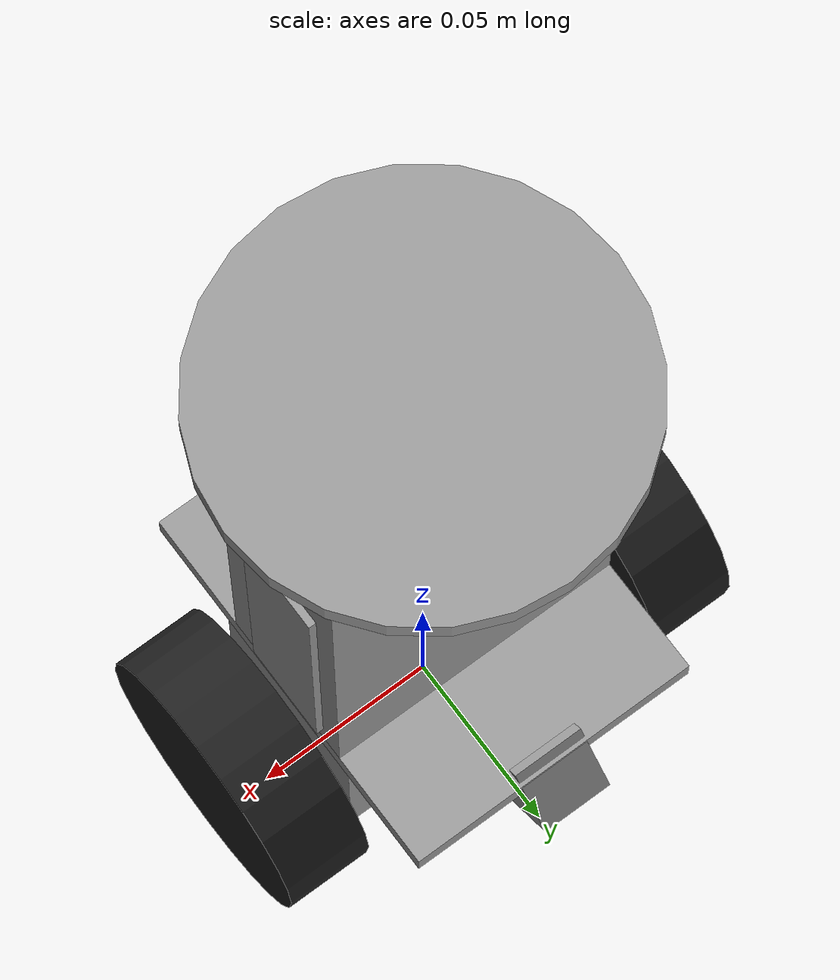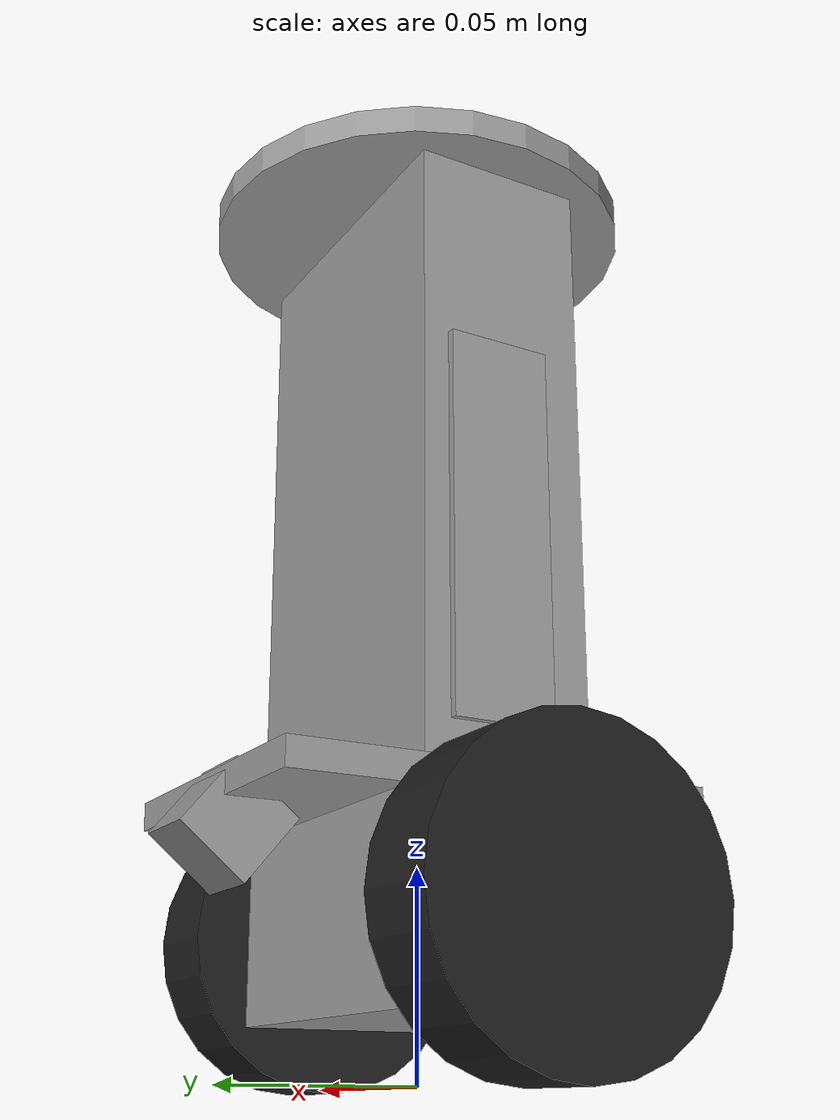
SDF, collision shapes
<sdf version='1.7'>
  <model name='balance_robot'>
    <link name='base_footprint'>
      <inertial>
        <pose>0 0.000456 0.079402 0 -0 0</pose>
        <mass>1.163</mass>
        <inertia>
          <ixx>0.00420792</ixx>
          <ixy>0</ixy>
          <ixz>0</ixz>
          <iyy>0.00452083</iyy>
          <iyz>-2.2842e-05</iyz>
          <izz>0.00102746</izz>
        </inertia>
      </inertial>
      <collision name='base_footprint_fixed_joint_lump__base_link_collision'>
        <pose>0 0 0.0375 0 -0 0</pose>
        <geometry>
          <box>
            <size>0.083 0.05 0.046</size>
          </box>
        </geometry>
        <surface>
          <contact>
            <ode/>
          </contact>
          <friction>
            <ode/>
          </friction>
        </surface>
      </collision>
      <collision name='base_footprint_fixed_joint_lump__body_link_collision_1'>
        <pose>0 0 0.1425 0 -0 0</pose>
        <geometry>
          <box>
            <size>0.083 0.043 0.15</size>
          </box>
        </geometry>
        <surface>
          <contact>
            <ode/>
          </contact>
          <friction>
            <ode/>
          </friction>
        </surface>
      </collision>
      <collision name='base_footprint_fixed_joint_lump__batteryPack_link_collision_2'>
        <pose>0 0.002 0.1225 0 -0 0</pose>
        <geometry>
          <box>
            <size>0.087 0.026 0.0936</size>
          </box>
        </geometry>
        <surface>
          <contact>
            <ode/>
          </contact>
          <friction>
            <ode/>
          </friction>
        </surface>
      </collision>
      <collision name='base_footprint_fixed_joint_lump__basePlate_link_collision_3'>
        <pose>0 0 0.064 0 -0 0</pose>
        <geometry>
          <box>
            <size>0.083 0.108 0.007</size>
          </box>
        </geometry>
        <surface>
          <contact>
            <ode/>
          </contact>
          <friction>
            <ode/>
          </friction>
        </surface>
      </collision>
      <collision name='base_footprint_fixed_joint_lump__backTipStop_link_collision_4'>
        <pose>0 0.049857 0.055508 -0.879646 0 0</pose>
        <geometry>
          <box>
            <size>0.02 0.02 0.02</size>
          </box>
        </geometry>
        <surface>
          <contact>
            <ode/>
          </contact>
          <friction>
            <ode>
              <mu>0.5</mu>
              <mu2>0.5</mu2>
            </ode>
          </friction>
        </surface>
      </collision>
      <collision name='base_footprint_fixed_joint_lump__frontTipStop_link_collision_5'>
        <pose>0 -0.049857 0.055508 0.879646 -0 0</pose>
        <geometry>
          <box>
            <size>0.02 0.02 0.02</size>
          </box>
        </geometry>
        <surface>
          <contact>
            <ode/>
          </contact>
          <friction>
            <ode>
              <mu>0.5</mu>
              <mu2>0.5</mu2>
            </ode>
          </friction>
        </surface>
      </collision>
      <collision name='base_footprint_fixed_joint_lump__topPlate_link_collision_6'>
        <pose>0 0 0.221 0 -0 0</pose>
        <geometry>
          <cylinder>
            <length>0.007</length>
            <radius>0.054</radius>
          </cylinder>
        </geometry>
        <surface>
          <contact>
            <ode/>
          </contact>
          <friction>
            <ode/>
          </friction>
        </surface>
      </collision>
      <visual name='base_footprint_fixed_joint_lump__base_link_visual'>
        <pose>0 0 0.0375 0 -0 0</pose>
        <geometry>
          <mesh>
            <scale>1 1 1</scale>
            <uri>model://balance_robot/meshes/StepperBase.dae</uri>
          </mesh>
        </geometry>
        <material>
          <script>
            <name>Gazebo/Gray</name>
            <uri>file://media/materials/scripts/gazebo.material</uri>
          </script>
        </material>
      </visual>
      <visual name='base_footprint_fixed_joint_lump__body_link_visual_1'>
        <pose>0.00045 0 0.129 0 -0 0</pose>
        <geometry>
          <mesh>
            <scale>1 1 1</scale>
            <uri>model://balance_robot/meshes/MainBody.dae</uri>
          </mesh>
        </geometry>
        <material>
          <script>
            <name>Gazebo/White</name>
            <uri>file://media/materials/scripts/gazebo.material</uri>
          </script>
        </material>
      </visual>
      <visual name='base_footprint_fixed_joint_lump__batteryPack_link_visual_2'>
        <pose>0 -0.0055 0.1225 0 -0 0</pose>
        <geometry>
          <mesh>
            <scale>1 1 1</scale>
            <uri>model://balance_robot/meshes/PowerBank.dae</uri>
          </mesh>
        </geometry>
        <material>
          <script>
            <name>Gazebo/Gray</name>
            <uri>file://media/materials/scripts/gazebo.material</uri>
          </script>
        </material>
      </visual>
      <visual name='base_footprint_fixed_joint_lump__basePlate_link_visual_3'>
        <pose>0 0 0.064 0 -0 0</pose>
        <geometry>
          <box>
            <size>0.083 0.108 0.007</size>
          </box>
        </geometry>
        <material>
          <script>
            <name>Gazebo/Blue</name>
            <uri>file://media/materials/scripts/gazebo.material</uri>
          </script>
        </material>
      </visual>
      <visual name='base_footprint_fixed_joint_lump__backTipStop_link_visual_4'>
        <pose>0 0.049857 0.055508 -0.879646 0 0</pose>
        <geometry>
          <mesh>
            <scale>1 1 1</scale>
            <uri>model://balance_robot/meshes/TipOverStop.dae</uri>
          </mesh>
        </geometry>
        <material>
          <script>
            <name>Gazebo/Blue</name>
            <uri>file://media/materials/scripts/gazebo.material</uri>
          </script>
        </material>
      </visual>
      <visual name='base_footprint_fixed_joint_lump__frontTipStop_link_visual_5'>
        <pose>0 -0.049857 0.055508 0.879646 -0 0</pose>
        <geometry>
          <mesh>
            <scale>1 1 1</scale>
            <uri>model://balance_robot/meshes/TipOverStop.dae</uri>
          </mesh>
        </geometry>
        <material>
          <script>
            <name>Gazebo/Blue</name>
            <uri>file://media/materials/scripts/gazebo.material</uri>
          </script>
        </material>
      </visual>
      <visual name='base_footprint_fixed_joint_lump__topPlate_link_visual_6'>
        <pose>0.0001 -0.0015 0.221 0 -0 0</pose>
        <geometry>
          <mesh>
            <scale>1 1 1</scale>
            <uri>model://balance_robot/meshes/TopPlate.dae</uri>
          </mesh>
        </geometry>
        <material>
          <script>
            <name>Gazebo/Blue</name>
            <uri>file://media/materials/scripts/gazebo.material</uri>
          </script>
        </material>
      </visual>
    </link>
    <joint name='left_wheel_joint' type='revolute'>
      <pose relative_to='base_footprint'>-0.05675 0 0.0365 0 -1.5708 0</pose>
      <parent>base_footprint</parent>
      <child>left_wheel_link</child>
      <axis>
        <xyz>0 0 -1</xyz>
        <limit>
          <lower>-1e+16</lower>
          <upper>1e+16</upper>
        </limit>
        <dynamics>
          <spring_reference>0</spring_reference>
          <spring_stiffness>0</spring_stiffness>
        </dynamics>
      </axis>
    </joint>
    <link name='left_wheel_link'>
      <pose relative_to='left_wheel_joint'>0 0 0 0 -0 0</pose>
      <inertial>
        <pose>0 0 0 0 -0 0</pose>
        <mass>0.04</mass>
        <inertia>
          <ixx>1.59825e-05</ixx>
          <ixy>0</ixy>
          <ixz>0</ixz>
          <iyy>1.59825e-05</iyy>
          <iyz>0</iyz>
          <izz>2.8125e-05</izz>
        </inertia>
      </inertial>
      <collision name='left_wheel_link_collision'>
        <pose>0 0 0 0 -0 0</pose>
        <geometry>
          <cylinder>
            <length>0.024</length>
            <radius>0.0375</radius>
          </cylinder>
        </geometry>
        <surface>
          <contact>
            <ode/>
          </contact>
          <friction>
            <ode/>
          </friction>
        </surface>
      </collision>
      <visual name='left_wheel_link_visual'>
        <pose>0 0 0 0 1.5708 0</pose>
        <geometry>
          <mesh>
            <scale>1 1 1</scale>
            <uri>model://balance_robot/meshes/Wheel.dae</uri>
          </mesh>
        </geometry>
        <material>
          <script>
            <name>Gazebo/Black</name>
            <uri>file://media/materials/scripts/gazebo.material</uri>
          </script>
        </material>
      </visual>
    </link>
    <joint name='right_wheel_joint' type='revolute'>
      <pose relative_to='base_footprint'>0.05675 0 0.0365 0 1.5708 0</pose>
      <parent>base_footprint</parent>
      <child>right_wheel_link</child>
      <axis>
        <xyz>0 0 1</xyz>
        <limit>
          <lower>-1e+16</lower>
          <upper>1e+16</upper>
        </limit>
        <dynamics>
          <spring_reference>0</spring_reference>
          <spring_stiffness>0</spring_stiffness>
        </dynamics>
      </axis>
    </joint>
    <link name='right_wheel_link'>
      <pose relative_to='right_wheel_joint'>0 0 0 0 -0 0</pose>
      <inertial>
        <pose>0 0 0 0 -0 0</pose>
        <mass>0.04</mass>
        <inertia>
          <ixx>1.59825e-05</ixx>
          <ixy>0</ixy>
          <ixz>0</ixz>
          <iyy>1.59825e-05</iyy>
          <iyz>0</iyz>
          <izz>2.8125e-05</izz>
        </inertia>
      </inertial>
      <collision name='right_wheel_link_collision'>
        <pose>0 0 0 0 -0 0</pose>
        <geometry>
          <cylinder>
            <length>0.024</length>
            <radius>0.0375</radius>
          </cylinder>
        </geometry>
        <surface>
          <contact>
            <ode/>
          </contact>
          <friction>
            <ode/>
          </friction>
        </surface>
      </collision>
      <visual name='right_wheel_link_visual'>
        <pose>0 0 0 0 1.5708 0</pose>
        <geometry>
          <mesh>
            <scale>1 1 1</scale>
            <uri>model://balance_robot/meshes/Wheel.dae</uri>
          </mesh>
        </geometry>
        <material>
          <script>
            <name>Gazebo/Black</name>
            <uri>file://media/materials/scripts/gazebo.material</uri>
          </script>
        </material>
      </visual>
    </link>
    <plugin name='gazebo_ros_joint_state_publisher' filename='libgazebo_ros_joint_state_publisher.so'>
      <update_rate>20</update_rate>
      <joint_name>right_wheel_joint</joint_name>
      <joint_name>left_wheel_joint</joint_name>
    </plugin>
    <static>0</static>
    <plugin name='diff_drive' filename='libgazebo_ros_diff_drive.so'>
      <left_joint>left_wheel_joint</left_joint>
      <right_joint>right_wheel_joint</right_joint>
      <wheel_separation>0.1135</wheel_separation>
      <wheel_diameter>0.075</wheel_diameter>
      <max_wheel_torque>20</max_wheel_torque>
      <max_wheel_acceleration>5.0</max_wheel_acceleration>
      <odometry_frame>odom</odometry_frame>
      <robot_base_frame>base_link</robot_base_frame>
      <publish_odom>1</publish_odom>
      <publish_odom_tf>1</publish_odom_tf>
      <publish_wheel_tf>1</publish_wheel_tf>
    </plugin>
  </model>
</sdf>
